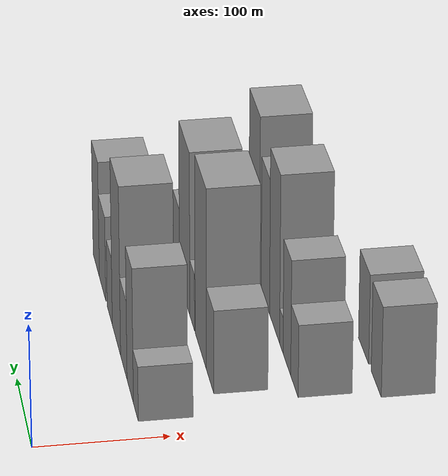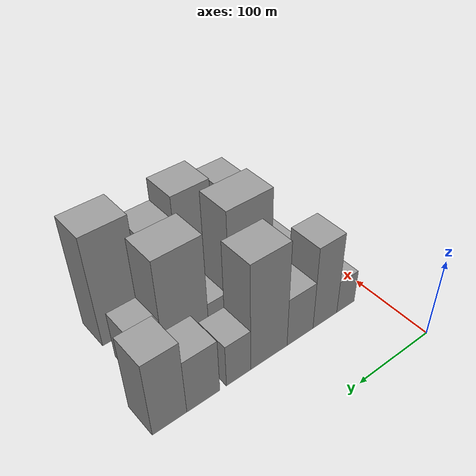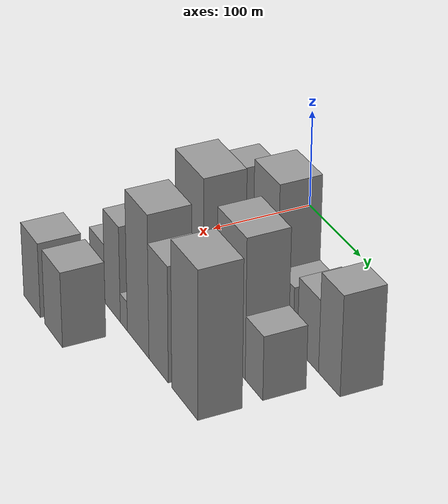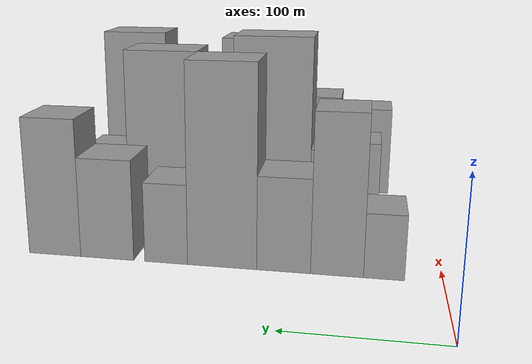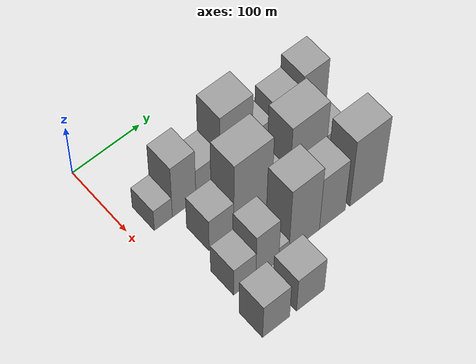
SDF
<sdf version="1.6">
 <world name="default">
  <model name="building_27">
   <static>1</static>
   <pose>100.0000 38.0958 0 0.000000 0.000000 0.000000</pose>
   <link name="link">
    <pose>0 0 22.50 0 0 0</pose>
    <collision name="collision"><geometry><box><size>40.0000 26.4845 45.0000</size></box></geometry></collision>
    <visual name="visual">
     <cast_shadows>0</cast_shadows>
     <geometry><box><size>40.0000 26.4845 45.0000</size></box></geometry>
     <material>
      <script>
       <uri>model://grey_wall/materials/scripts</uri>
       <uri>model://grey_wall/materials/textures</uri>
       <name>vrc/grey_wall</name>
      </script>
     </material>
    </visual>
   </link>
  </model>
  <model name="building_28">
   <static>1</static>
   <pose>100.0000 68.7779 0 0.000000 0.000000 0.000000</pose>
   <link name="link">
    <pose>0 0 55.50 0 0 0</pose>
    <collision name="collision"><geometry><box><size>40.0000 34.8797 111.0000</size></box></geometry></collision>
    <visual name="visual">
     <cast_shadows>0</cast_shadows>
     <geometry><box><size>40.0000 34.8797 111.0000</size></box></geometry>
     <material>
      <script>
       <uri>model://grey_wall/materials/scripts</uri>
       <uri>model://grey_wall/materials/textures</uri>
       <name>vrc/grey_wall</name>
      </script>
     </material>
    </visual>
   </link>
  </model>
  <model name="building_29">
   <static>1</static>
   <pose>100.0000 104.3803 0 0.000000 0.000000 0.000000</pose>
   <link name="link">
    <pose>0 0 33.00 0 0 0</pose>
    <collision name="collision"><geometry><box><size>40.0000 36.3250 66.0000</size></box></geometry></collision>
    <visual name="visual">
     <cast_shadows>0</cast_shadows>
     <geometry><box><size>40.0000 36.3250 66.0000</size></box></geometry>
     <material>
      <script>
       <uri>model://grey_wall/materials/scripts</uri>
       <uri>model://grey_wall/materials/textures</uri>
       <name>vrc/grey_wall</name>
      </script>
     </material>
    </visual>
   </link>
  </model>
  <model name="building_30">
   <static>1</static>
   <pose>100.0000 146.4982 0 0.000000 0.000000 0.000000</pose>
   <link name="link">
    <pose>0 0 70.50 0 0 0</pose>
    <collision name="collision"><geometry><box><size>40.0000 47.9109 141.0000</size></box></geometry></collision>
    <visual name="visual">
     <cast_shadows>0</cast_shadows>
     <geometry><box><size>40.0000 47.9109 141.0000</size></box></geometry>
     <material>
      <script>
       <uri>model://grey_wall/materials/scripts</uri>
       <uri>model://grey_wall/materials/textures</uri>
       <name>vrc/grey_wall</name>
      </script>
     </material>
    </visual>
   </link>
  </model>
  <model name="building_31">
   <static>1</static>
   <pose>100.0000 185.6217 0 0.000000 0.000000 0.000000</pose>
   <link name="link">
    <pose>0 0 28.50 0 0 0</pose>
    <collision name="collision"><geometry><box><size>40.0000 30.3360 57.0000</size></box></geometry></collision>
    <visual name="visual">
     <cast_shadows>0</cast_shadows>
     <geometry><box><size>40.0000 30.3360 57.0000</size></box></geometry>
     <material>
      <script>
       <uri>model://grey_wall/materials/scripts</uri>
       <uri>model://grey_wall/materials/textures</uri>
       <name>vrc/grey_wall</name>
      </script>
     </material>
    </visual>
   </link>
  </model>
  <model name="building_32">
   <static>1</static>
   <pose>100.0000 228.1606 0 0.000000 0.000000 0.000000</pose>
   <link name="link">
    <pose>0 0 36.00 0 0 0</pose>
    <collision name="collision"><geometry><box><size>40.0000 38.7418 72.0000</size></box></geometry></collision>
    <visual name="visual">
     <cast_shadows>0</cast_shadows>
     <geometry><box><size>40.0000 38.7418 72.0000</size></box></geometry>
     <material>
      <script>
       <uri>model://grey_wall/materials/scripts</uri>
       <uri>model://grey_wall/materials/textures</uri>
       <name>vrc/grey_wall</name>
      </script>
     </material>
    </visual>
   </link>
  </model>
  <model name="building_33">
   <static>1</static>
   <pose>100.0000 266.7528 0 0.000000 0.000000 0.000000</pose>
   <link name="link">
    <pose>0 0 49.50 0 0 0</pose>
    <collision name="collision"><geometry><box><size>40.0000 38.4427 99.0000</size></box></geometry></collision>
    <visual name="visual">
     <cast_shadows>0</cast_shadows>
     <geometry><box><size>40.0000 38.4427 99.0000</size></box></geometry>
     <material>
      <script>
       <uri>model://grey_wall/materials/scripts</uri>
       <uri>model://grey_wall/materials/textures</uri>
       <name>vrc/grey_wall</name>
      </script>
     </material>
    </visual>
   </link>
  </model>
  <model name="building_86">
   <static>1</static>
   <pose>160.0000 73.9550 0 0.000000 0.000000 0.000000</pose>
   <link name="link">
    <pose>0 0 34.50 0 0 0</pose>
    <collision name="collision"><geometry><box><size>40.0000 36.3646 69.0000</size></box></geometry></collision>
    <visual name="visual">
     <cast_shadows>0</cast_shadows>
     <geometry><box><size>40.0000 36.3646 69.0000</size></box></geometry>
     <material>
      <script>
       <uri>model://grey_wall/materials/scripts</uri>
       <uri>model://grey_wall/materials/textures</uri>
       <name>vrc/grey_wall</name>
      </script>
     </material>
    </visual>
   </link>
  </model>
  <model name="building_87">
   <static>1</static>
   <pose>160.0000 120.4749 0 0.000000 0.000000 0.000000</pose>
   <link name="link">
    <pose>0 0 75.00 0 0 0</pose>
    <collision name="collision"><geometry><box><size>40.0000 56.6753 150.0000</size></box></geometry></collision>
    <visual name="visual">
     <cast_shadows>0</cast_shadows>
     <geometry><box><size>40.0000 56.6753 150.0000</size></box></geometry>
     <material>
      <script>
       <uri>model://grey_wall/materials/scripts</uri>
       <uri>model://grey_wall/materials/textures</uri>
       <name>vrc/grey_wall</name>
      </script>
     </material>
    </visual>
   </link>
  </model>
  <model name="building_88">
   <static>1</static>
   <pose>160.0000 163.8272 0 0.000000 0.000000 0.000000</pose>
   <link name="link">
    <pose>0 0 24.00 0 0 0</pose>
    <collision name="collision"><geometry><box><size>40.0000 24.0293 48.0000</size></box></geometry></collision>
    <visual name="visual">
     <cast_shadows>0</cast_shadows>
     <geometry><box><size>40.0000 24.0293 48.0000</size></box></geometry>
     <material>
      <script>
       <uri>model://grey_wall/materials/scripts</uri>
       <uri>model://grey_wall/materials/textures</uri>
       <name>vrc/grey_wall</name>
      </script>
     </material>
    </visual>
   </link>
  </model>
  <model name="building_89">
   <static>1</static>
   <pose>160.0000 203.3554 0 0.000000 0.000000 0.000000</pose>
   <link name="link">
    <pose>0 0 69.00 0 0 0</pose>
    <collision name="collision"><geometry><box><size>40.0000 55.0271 138.0000</size></box></geometry></collision>
    <visual name="visual">
     <cast_shadows>0</cast_shadows>
     <geometry><box><size>40.0000 55.0271 138.0000</size></box></geometry>
     <material>
      <script>
       <uri>model://grey_wall/materials/scripts</uri>
       <uri>model://grey_wall/materials/textures</uri>
       <name>vrc/grey_wall</name>
      </script>
     </material>
    </visual>
   </link>
  </model>
  <model name="building_90">
   <static>1</static>
   <pose>160.0000 247.3424 0 0.000000 0.000000 0.000000</pose>
   <link name="link">
    <pose>0 0 31.50 0 0 0</pose>
    <collision name="collision"><geometry><box><size>40.0000 32.9470 63.0000</size></box></geometry></collision>
    <visual name="visual">
     <cast_shadows>0</cast_shadows>
     <geometry><box><size>40.0000 32.9470 63.0000</size></box></geometry>
     <material>
      <script>
       <uri>model://grey_wall/materials/scripts</uri>
       <uri>model://grey_wall/materials/textures</uri>
       <name>vrc/grey_wall</name>
      </script>
     </material>
    </visual>
   </link>
  </model>
  <model name="building_135">
   <static>1</static>
   <pose>220.0000 57.3773 0 0.000000 0.000000 0.000000</pose>
   <link name="link">
    <pose>0 0 30.00 0 0 0</pose>
    <collision name="collision"><geometry><box><size>40.0000 32.4398 60.0000</size></box></geometry></collision>
    <visual name="visual">
     <cast_shadows>0</cast_shadows>
     <geometry><box><size>40.0000 32.4398 60.0000</size></box></geometry>
     <material>
      <script>
       <uri>model://grey_wall/materials/scripts</uri>
       <uri>model://grey_wall/materials/textures</uri>
       <name>vrc/grey_wall</name>
      </script>
     </material>
    </visual>
   </link>
  </model>
  <model name="building_136">
   <static>1</static>
   <pose>220.0000 90.6429 0 0.000000 0.000000 0.000000</pose>
   <link name="link">
    <pose>0 0 48.00 0 0 0</pose>
    <collision name="collision"><geometry><box><size>40.0000 34.0913 96.0000</size></box></geometry></collision>
    <visual name="visual">
     <cast_shadows>0</cast_shadows>
     <geometry><box><size>40.0000 34.0913 96.0000</size></box></geometry>
     <material>
      <script>
       <uri>model://grey_wall/materials/scripts</uri>
       <uri>model://grey_wall/materials/textures</uri>
       <name>vrc/grey_wall</name>
      </script>
     </material>
    </visual>
   </link>
  </model>
  <model name="building_137">
   <static>1</static>
   <pose>220.0000 115.3099 0 0.000000 0.000000 0.000000</pose>
   <link name="link">
    <pose>0 0 15.00 0 0 0</pose>
    <collision name="collision"><geometry><box><size>40.0000 15.2427 30.0000</size></box></geometry></collision>
    <visual name="visual">
     <cast_shadows>0</cast_shadows>
     <geometry><box><size>40.0000 15.2427 30.0000</size></box></geometry>
     <material>
      <script>
       <uri>model://grey_wall/materials/scripts</uri>
       <uri>model://grey_wall/materials/textures</uri>
       <name>vrc/grey_wall</name>
      </script>
     </material>
    </visual>
   </link>
  </model>
  <model name="building_138">
   <static>1</static>
   <pose>220.0000 145.8488 0 0.000000 0.000000 0.000000</pose>
   <link name="link">
    <pose>0 0 70.50 0 0 0</pose>
    <collision name="collision"><geometry><box><size>40.0000 45.8351 141.0000</size></box></geometry></collision>
    <visual name="visual">
     <cast_shadows>0</cast_shadows>
     <geometry><box><size>40.0000 45.8351 141.0000</size></box></geometry>
     <material>
      <script>
       <uri>model://grey_wall/materials/scripts</uri>
       <uri>model://grey_wall/materials/textures</uri>
       <name>vrc/grey_wall</name>
      </script>
     </material>
    </visual>
   </link>
  </model>
  <model name="building_139">
   <static>1</static>
   <pose>220.0000 188.4964 0 0.000000 0.000000 0.000000</pose>
   <link name="link">
    <pose>0 0 57.00 0 0 0</pose>
    <collision name="collision"><geometry><box><size>40.0000 39.4601 114.0000</size></box></geometry></collision>
    <visual name="visual">
     <cast_shadows>0</cast_shadows>
     <geometry><box><size>40.0000 39.4601 114.0000</size></box></geometry>
     <material>
      <script>
       <uri>model://grey_wall/materials/scripts</uri>
       <uri>model://grey_wall/materials/textures</uri>
       <name>vrc/grey_wall</name>
      </script>
     </material>
    </visual>
   </link>
  </model>
  <model name="building_140">
   <static>1</static>
   <pose>220.0000 240.8151 0 0.000000 0.000000 0.000000</pose>
   <link name="link">
    <pose>0 0 72.00 0 0 0</pose>
    <collision name="collision"><geometry><box><size>40.0000 51.1774 144.0000</size></box></geometry></collision>
    <visual name="visual">
     <cast_shadows>0</cast_shadows>
     <geometry><box><size>40.0000 51.1774 144.0000</size></box></geometry>
     <material>
      <script>
       <uri>model://grey_wall/materials/scripts</uri>
       <uri>model://grey_wall/materials/textures</uri>
       <name>vrc/grey_wall</name>
      </script>
     </material>
    </visual>
   </link>
  </model>
  <model name="building_186">
   <static>1</static>
   <pose>280.0000 51.8087 0 0.000000 0.000000 0.000000</pose>
   <link name="link">
    <pose>0 0 37.50 0 0 0</pose>
    <collision name="collision"><geometry><box><size>40.0000 39.5154 75.0000</size></box></geometry></collision>
    <visual name="visual">
     <cast_shadows>0</cast_shadows>
     <geometry><box><size>40.0000 39.5154 75.0000</size></box></geometry>
     <material>
      <script>
       <uri>model://grey_wall/materials/scripts</uri>
       <uri>model://grey_wall/materials/textures</uri>
       <name>vrc/grey_wall</name>
      </script>
     </material>
    </visual>
   </link>
  </model>
  <model name="building_187">
   <static>1</static>
   <pose>280.0000 102.1870 0 0.000000 0.000000 0.000000</pose>
   <link name="link">
    <pose>0 0 37.50 0 0 0</pose>
    <collision name="collision"><geometry><box><size>40.0000 41.2413 75.0000</size></box></geometry></collision>
    <visual name="visual">
     <cast_shadows>0</cast_shadows>
     <geometry><box><size>40.0000 41.2413 75.0000</size></box></geometry>
     <material>
      <script>
       <uri>model://grey_wall/materials/scripts</uri>
       <uri>model://grey_wall/materials/textures</uri>
       <name>vrc/grey_wall</name>
      </script>
     </material>
    </visual>
   </link>
  </model>
 </world>
</sdf>
